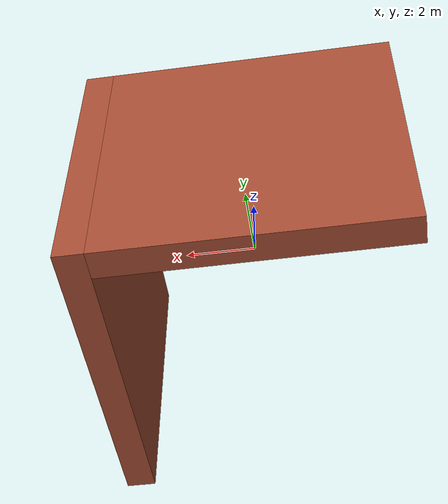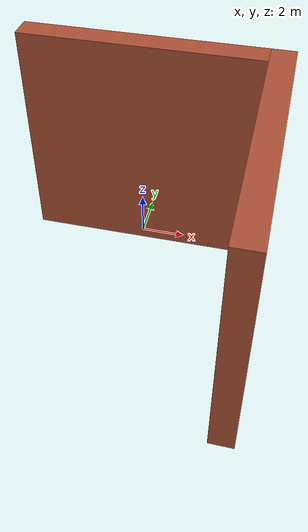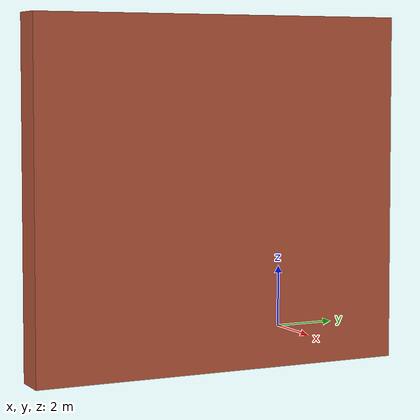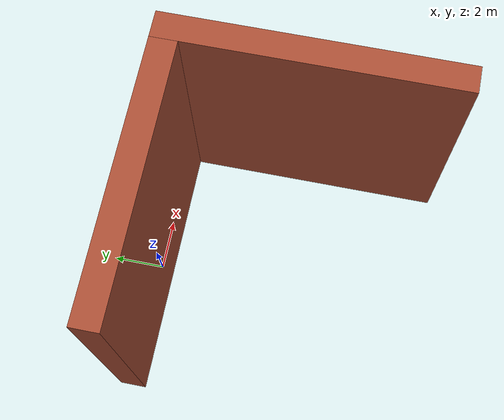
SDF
<?xml version="1.0" ?>
<sdf version="1.5">
  <model name="wall">
    <static>true</static>
    <link name="wall_0_link">
      <pose>0 0 5 0 0 0</pose>
      <collision name="collision">
        <geometry>
          <box>
            <size>10 1 10</size>
          </box>
        </geometry>
      </collision>
      <visual name="visual">
        <cast_shadows>false</cast_shadows>
        <geometry>
          <box>
            <size>10 1 10</size>
          </box>
        </geometry>
        <material>
          <script>
            <uri>model://wall/materials/scripts</uri>
            <uri>model://wall/materials/textures</uri>
            <name>vrc/bricks</name>
          </script>
        </material>
      </visual>
    </link>
    <link name="wall_1_link">
      <pose>5.5 -5 5 0 0 0</pose>
      <collision name="collision">
        <geometry>
          <box>
            <size>1 11 10</size>
          </box>
        </geometry>
      </collision>
      <visual name="visual">
        <cast_shadows>false</cast_shadows>
        <geometry>
          <box>
            <size>1 11 10</size>
          </box>
        </geometry>
        <material>
          <script>
            <uri>model://wall/materials/scripts</uri>
            <uri>model://wall/materials/textures</uri>
            <name>vrc/bricks</name>
          </script>
        </material>
      </visual>
    </link>
  </model>
</sdf>
